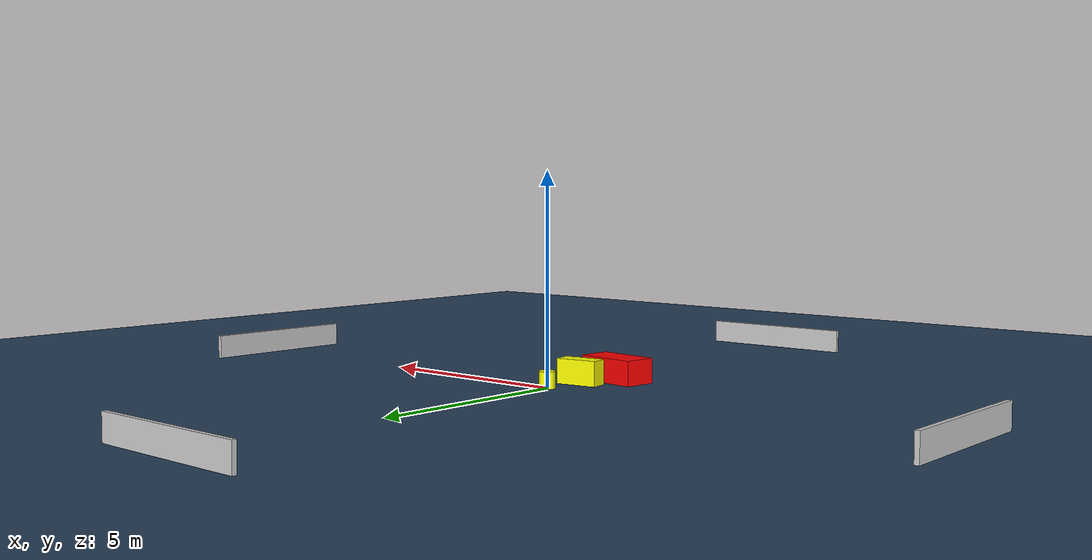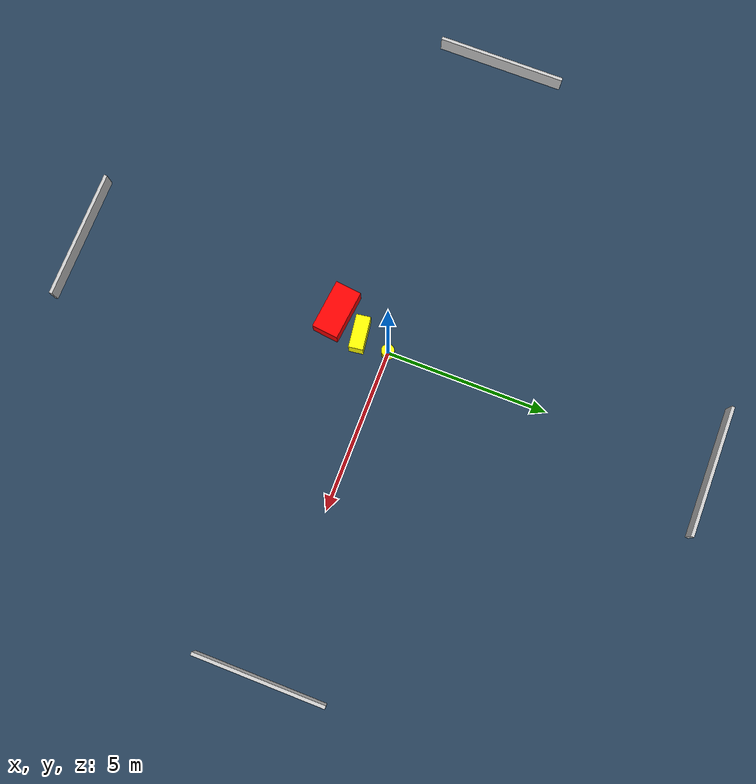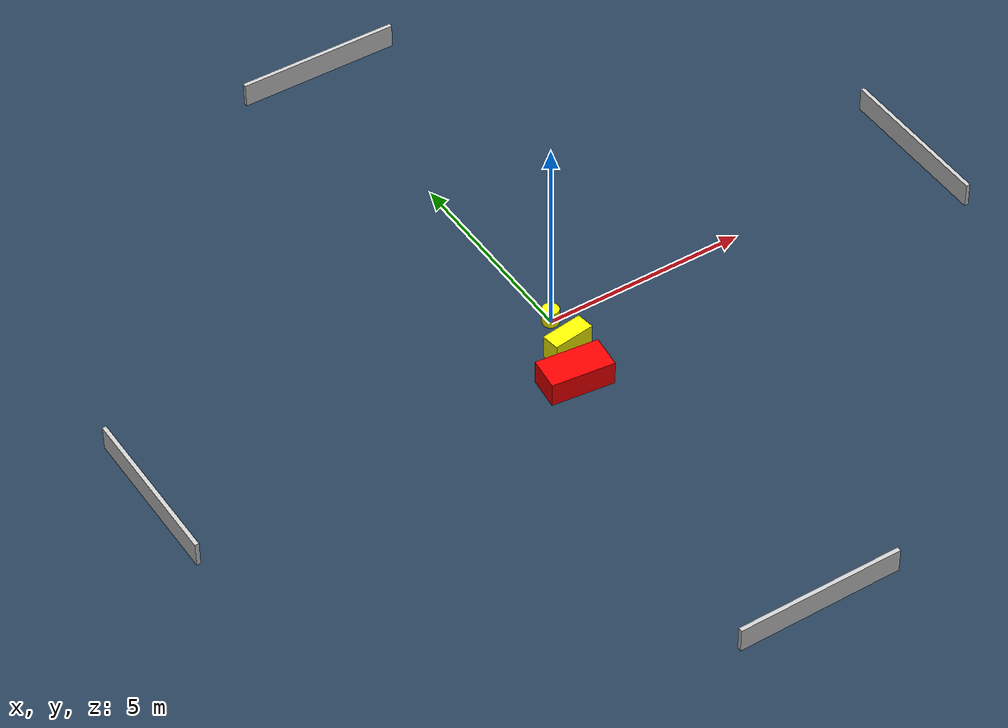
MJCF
<?xml version="1.0" ?>
<mujoco model="generated_environment">
  <option timestep="0.01" integrator="RK4" cone="elliptic"/>
  <default>
    <geom density="1"/>
  </default>
  <asset>
    <texture builtin="gradient" height="3072" name="skybox" rgb1="0.3 0.5 0.7" rgb2="0 0 0" type="skybox" width="512"/>
    <texture builtin="checker" height="300" name="groundplane" rgb1="0.2 0.3 0.4" rgb2="0.1 0.2 0.3" type="2d" width="300"/>
    <material name="groundplane" reflectance="0.2" texrepeat="5 5" texture="groundplane"/>
  </asset>
  <worldbody>
    <light dir="0 0 -1" directional="true" pos="0 0 1.5"/>
    <geom condim="3" friction="0.5 0.005 0.001" material="groundplane" name="floor" pos="0 0 0" size="0 0 0.05" type="plane"/>
    <body name="walls">
      <geom name="wall_1" condim="4" pos="-10.0 0.0 0.3" rgba="0.800000011920929 0.800000011920929 0.800000011920929 1.0" size="0.05 2.0 0.3" type="box"/>
      <geom name="wall_2" condim="4" pos="10.0 0.0 0.3" rgba="0.800000011920929 0.800000011920929 0.800000011920929 1.0" size="0.05 2.0 0.3" type="box"/>
      <geom name="wall_3" condim="4" pos="0.0 -10.0 0.3" rgba="0.800000011920929 0.800000011920929 0.800000011920929 1.0" size="2.0 0.05 0.3" type="box"/>
      <geom name="wall_4" condim="4" pos="0.0 10.0 0.3" rgba="0.800000011920929 0.800000011920929 0.800000011920929 1.0" size="2.0 0.05 0.3" type="box"/>
    </body>
    <body name="robot">
      <joint name="joint_x" type="slide" pos="0 0 0" axis="1 0 0"/>
      <joint name="joint_y" type="slide" pos="0 0 0" axis="0 1 0"/>
      <geom name="robot" type="cylinder" pos="0.0 0.0 0.2" size="0.2 0.2 0.0" mass="5.0" friction="1.0 0.005 0.0001" condim="4" rgba="1.0 1.0 0.0 1.0"/>
    </body>
    <body name="obstacle_1_movable">
      <geom name="obstacle_1_movable" condim="4" pos="-0.18897120221344246 -0.967214923093762 0.3" euler="0 0 97.74527466518617" friction="0.0 0.005 0.001" rgba="1.0 1.0 0.0 1.0" size="0.22244613335141383 0.5148719931323185 0.3" type="box" mass="0.1"/>
      <joint type="free"/>
    </body>
    <body name="obstacle_2_static">
      <geom name="obstacle_2_static" condim="4" pos="-0.5853668083066678 -1.8529391630374263 0.3" euler="0 0 173.72556714013496" friction="0.0 0.005 0.001" rgba="1.0 0.0 0.0 1.0" size="0.7661326690306782 0.407620606994972 0.3" type="box"/>
    </body>
  </worldbody>
  <actuator>
    <motor name="actuator_x" joint="joint_x" gear="1" ctrlrange="-1 1"/>
    <motor name="actuator_y" joint="joint_y" gear="1" ctrlrange="-1 1"/>
  </actuator>
</mujoco>
